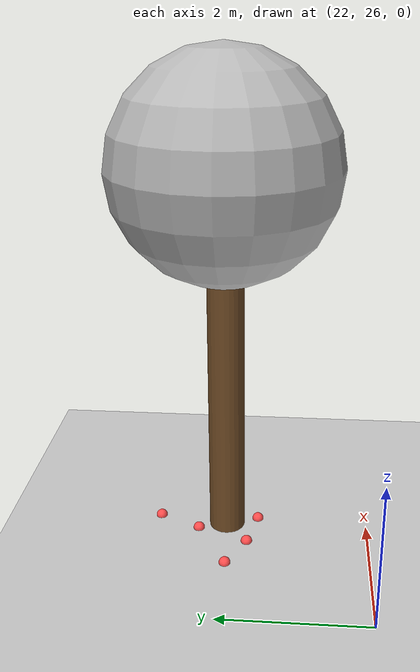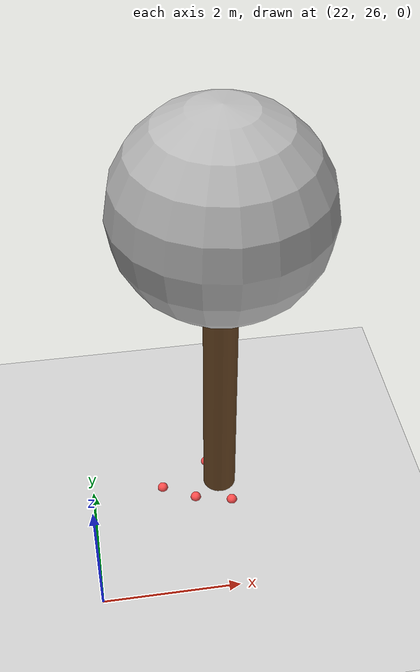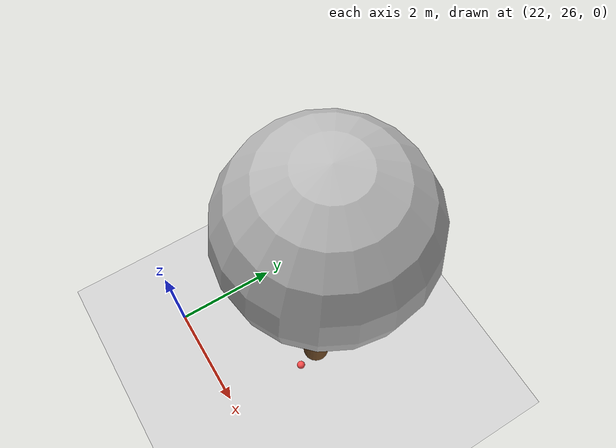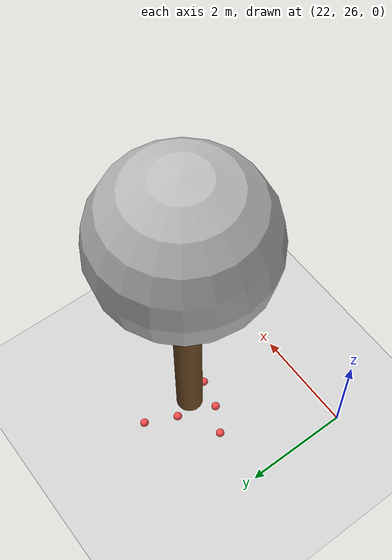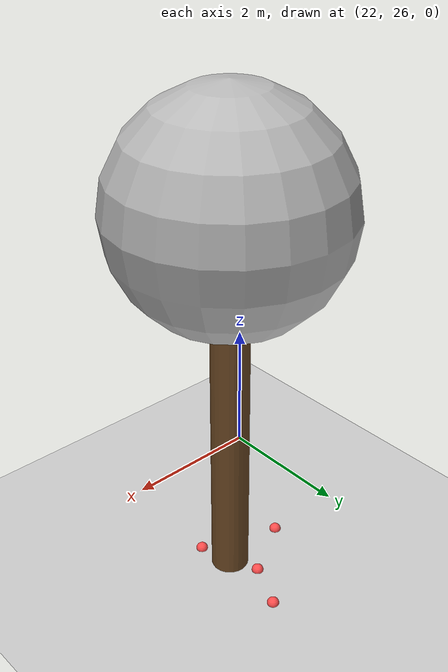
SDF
<sdf version="1.7">
 <world name="default">
  <model name="ground_plane">
   <static>1</static>
   <link name="link">
    <collision name="collision">
     <geometry><plane><normal>0 0 1</normal><size>100 100</size></plane></geometry>
     <surface>
      <contact><collide_bitmask>65535</collide_bitmask></contact>
      <friction><ode><mu>100</mu><mu2>50</mu2></ode></friction>
     </surface>
    </collision>
    <visual name="visual">
     <cast_shadows>0</cast_shadows>
     <geometry><plane><normal>0 0 1</normal><size>100 100</size></plane></geometry>
     <material>
      <script><uri>file://media/materials/scripts/gazebo.material</uri><name>Gazebo/Grey</name></script>
     </material>
    </visual>
   </link>
  </model>
  <model name="tree_simple_33">
   <static>1</static>
   <link name="link">
    <pose>0 0 0.1 0 -0 0</pose>
    <inertial>
     <mass>666</mass>
     <inertia>
      <ixx>0.0861167</ixx>
      <ixy>0</ixy>
      <ixz>0</ixz>
      <iyy>0.0861167</iyy>
      <iyz>0</iyz>
      <izz>0.0861167</izz>
     </inertia>
    </inertial>
    <collision name="collision_trunk">
     <pose>0 0 2 0 -0 0</pose>
     <geometry><cylinder><radius>0.25</radius><length>4</length></cylinder></geometry>
     <surface>
      <contact>
       <poissons_ratio>0.347</poissons_ratio>
       <elastic_modulus>8.8e+09</elastic_modulus>
       <ode><kp>100000</kp><kd>100</kd><max_vel>100</max_vel><min_depth>0.001</min_depth></ode>
      </contact>
      <friction>
       <torsional>
        <coefficient>1</coefficient>
        <use_patch_radius>0</use_patch_radius>
        <surface_radius>0.01</surface_radius>
       </torsional>
      </friction>
     </surface>
    </collision>
    <collision name="collision_treetop">
     <pose>0 0 5.2 0 -0 0</pose>
     <geometry><sphere><radius>1.5</radius></sphere></geometry>
     <surface>
      <contact>
       <poissons_ratio>0.347</poissons_ratio>
       <elastic_modulus>8.8e+09</elastic_modulus>
       <ode><kp>100000</kp><kd>100</kd><max_vel>100</max_vel><min_depth>0.001</min_depth></ode>
      </contact>
      <friction>
       <torsional>
        <coefficient>1</coefficient>
        <use_patch_radius>0</use_patch_radius>
        <surface_radius>0.01</surface_radius>
       </torsional>
      </friction>
     </surface>
    </collision>
    <visual name="trunk">
     <pose>0 0 2 0 -0 0</pose>
     <geometry><cylinder><radius>0.25</radius><length>4</length></cylinder></geometry>
     <material>
      <script>
       <uri>model://tree_simple/scripts</uri>
       <uri>model://tree_simple/materials/textures</uri>
       <name>TreeSimple/Trunk</name>
      </script>
     </material>
    </visual>
    <visual name="treetop">
     <pose>0 0 5.2 0 -0 0</pose>
     <geometry><sphere><radius>1.5</radius></sphere></geometry>
     <material>
      <script>
       <uri>model://tree_simple/scripts</uri>
       <uri>model://tree_simple/materials/textures</uri>
       <name>TreeSimple/Treetop</name>
      </script>
     </material>
    </visual>
   </link>
   <pose>24 28 -0.1 0 -0 0</pose>
  </model>
  <model name="seed_red_147">
   <link name="link">
    <inertial>
     <mass>1</mass>
     <inertia><ixx>0.1</ixx><ixy>0</ixy><ixz>0</ixz><iyy>0.1</iyy><iyz>0</iyz><izz>0.1</izz></inertia>
    </inertial>
    <visual name="visual">
     <geometry><sphere><radius>0.08</radius></sphere></geometry>
     <material>
      <script><name>Gazebo/Grey</name><uri>file://media/materials/scripts/gazebo.material</uri></script>
      <shader type="pixel"><normal_map>__default__</normal_map></shader>
      <ambient>1 0.3 0.3 1</ambient>
      <diffuse>0.7 0.7 0.7 1</diffuse>
      <specular>0.01 0.01 0.01 1</specular>
      <emissive>0 0 0 1</emissive>
     </material>
    </visual>
    <collision name="collision">
     <geometry><sphere><radius>0.0005</radius></sphere></geometry>
     <surface>
      <friction>
       <ode><mu>1</mu><mu2>1</mu2><fdir1>0 0 0</fdir1><slip1>0</slip1><slip2>0</slip2></ode>
       <torsional>
        <coefficient>1</coefficient>
        <patch_radius>0</patch_radius>
        <surface_radius>0</surface_radius>
        <use_patch_radius>1</use_patch_radius>
        <ode><slip>0</slip></ode>
       </torsional>
      </friction>
      <bounce><restitution_coefficient>0</restitution_coefficient><threshold>1e+06</threshold></bounce>
      <contact>
       <collide_without_contact>0</collide_without_contact>
       <collide_without_contact_bitmask>1</collide_without_contact_bitmask>
       <collide_bitmask>1</collide_bitmask>
       <ode>
        <soft_cfm>0</soft_cfm>
        <soft_erp>0.2</soft_erp>
        <kp>1e+13</kp>
        <kd>1</kd>
        <max_vel>0.01</max_vel>
        <min_depth>0</min_depth>
       </ode>
       <bullet>
        <split_impulse>1</split_impulse>
        <split_impulse_penetration_threshold>-0.01</split_impulse_penetration_threshold>
        <soft_cfm>0</soft_cfm>
        <soft_erp>0.2</soft_erp>
        <kp>1e+13</kp>
        <kd>1</kd>
       </bullet>
      </contact>
     </surface>
    </collision>
   </link>
   <static>0</static>
   <pose>23.8474 28.3948 0.0005 0 -0 0</pose>
  </model>
  <model name="seed_red_148">
   <link name="link">
    <inertial>
     <mass>1</mass>
     <inertia><ixx>0.1</ixx><ixy>0</ixy><ixz>0</ixz><iyy>0.1</iyy><iyz>0</iyz><izz>0.1</izz></inertia>
    </inertial>
    <visual name="visual">
     <geometry><sphere><radius>0.08</radius></sphere></geometry>
     <material>
      <script><name>Gazebo/Grey</name><uri>file://media/materials/scripts/gazebo.material</uri></script>
      <shader type="pixel"><normal_map>__default__</normal_map></shader>
      <ambient>1 0.3 0.3 1</ambient>
      <diffuse>0.7 0.7 0.7 1</diffuse>
      <specular>0.01 0.01 0.01 1</specular>
      <emissive>0 0 0 1</emissive>
     </material>
    </visual>
    <collision name="collision">
     <geometry><sphere><radius>0.0005</radius></sphere></geometry>
     <surface>
      <friction>
       <ode><mu>1</mu><mu2>1</mu2><fdir1>0 0 0</fdir1><slip1>0</slip1><slip2>0</slip2></ode>
       <torsional>
        <coefficient>1</coefficient>
        <patch_radius>0</patch_radius>
        <surface_radius>0</surface_radius>
        <use_patch_radius>1</use_patch_radius>
        <ode><slip>0</slip></ode>
       </torsional>
      </friction>
      <bounce><restitution_coefficient>0</restitution_coefficient><threshold>1e+06</threshold></bounce>
      <contact>
       <collide_without_contact>0</collide_without_contact>
       <collide_without_contact_bitmask>1</collide_without_contact_bitmask>
       <collide_bitmask>1</collide_bitmask>
       <ode>
        <soft_cfm>0</soft_cfm>
        <soft_erp>0.2</soft_erp>
        <kp>1e+13</kp>
        <kd>1</kd>
        <max_vel>0.01</max_vel>
        <min_depth>0</min_depth>
       </ode>
       <bullet>
        <split_impulse>1</split_impulse>
        <split_impulse_penetration_threshold>-0.01</split_impulse_penetration_threshold>
        <soft_cfm>0</soft_cfm>
        <soft_erp>0.2</soft_erp>
        <kp>1e+13</kp>
        <kd>1</kd>
       </bullet>
      </contact>
     </surface>
    </collision>
   </link>
   <static>0</static>
   <pose>24.1176 28.9769 0.0005 0 -0 0</pose>
  </model>
  <model name="seed_red_149">
   <link name="link">
    <inertial>
     <mass>1</mass>
     <inertia><ixx>0.1</ixx><ixy>0</ixy><ixz>0</ixz><iyy>0.1</iyy><iyz>0</iyz><izz>0.1</izz></inertia>
    </inertial>
    <visual name="visual">
     <geometry><sphere><radius>0.08</radius></sphere></geometry>
     <material>
      <script><name>Gazebo/Grey</name><uri>file://media/materials/scripts/gazebo.material</uri></script>
      <shader type="pixel"><normal_map>__default__</normal_map></shader>
      <ambient>1 0.3 0.3 1</ambient>
      <diffuse>0.7 0.7 0.7 1</diffuse>
      <specular>0.01 0.01 0.01 1</specular>
      <emissive>0 0 0 1</emissive>
     </material>
    </visual>
    <collision name="collision">
     <geometry><sphere><radius>0.0005</radius></sphere></geometry>
     <surface>
      <friction>
       <ode><mu>1</mu><mu2>1</mu2><fdir1>0 0 0</fdir1><slip1>0</slip1><slip2>0</slip2></ode>
       <torsional>
        <coefficient>1</coefficient>
        <patch_radius>0</patch_radius>
        <surface_radius>0</surface_radius>
        <use_patch_radius>1</use_patch_radius>
        <ode><slip>0</slip></ode>
       </torsional>
      </friction>
      <bounce><restitution_coefficient>0</restitution_coefficient><threshold>1e+06</threshold></bounce>
      <contact>
       <collide_without_contact>0</collide_without_contact>
       <collide_without_contact_bitmask>1</collide_without_contact_bitmask>
       <collide_bitmask>1</collide_bitmask>
       <ode>
        <soft_cfm>0</soft_cfm>
        <soft_erp>0.2</soft_erp>
        <kp>1e+13</kp>
        <kd>1</kd>
        <max_vel>0.01</max_vel>
        <min_depth>0</min_depth>
       </ode>
       <bullet>
        <split_impulse>1</split_impulse>
        <split_impulse_penetration_threshold>-0.01</split_impulse_penetration_threshold>
        <soft_cfm>0</soft_cfm>
        <soft_erp>0.2</soft_erp>
        <kp>1e+13</kp>
        <kd>1</kd>
       </bullet>
      </contact>
     </surface>
    </collision>
   </link>
   <static>0</static>
   <pose>24.1323 27.5616 0.0005 0 -0 0</pose>
  </model>
  <model name="seed_red_150">
   <link name="link">
    <inertial>
     <mass>1</mass>
     <inertia><ixx>0.1</ixx><ixy>0</ixy><ixz>0</ixz><iyy>0.1</iyy><iyz>0</iyz><izz>0.1</izz></inertia>
    </inertial>
    <visual name="visual">
     <geometry><sphere><radius>0.08</radius></sphere></geometry>
     <material>
      <script><name>Gazebo/Grey</name><uri>file://media/materials/scripts/gazebo.material</uri></script>
      <shader type="pixel"><normal_map>__default__</normal_map></shader>
      <ambient>1 0.3 0.3 1</ambient>
      <diffuse>0.7 0.7 0.7 1</diffuse>
      <specular>0.01 0.01 0.01 1</specular>
      <emissive>0 0 0 1</emissive>
     </material>
    </visual>
    <collision name="collision">
     <geometry><sphere><radius>0.0005</radius></sphere></geometry>
     <surface>
      <friction>
       <ode><mu>1</mu><mu2>1</mu2><fdir1>0 0 0</fdir1><slip1>0</slip1><slip2>0</slip2></ode>
       <torsional>
        <coefficient>1</coefficient>
        <patch_radius>0</patch_radius>
        <surface_radius>0</surface_radius>
        <use_patch_radius>1</use_patch_radius>
        <ode><slip>0</slip></ode>
       </torsional>
      </friction>
      <bounce><restitution_coefficient>0</restitution_coefficient><threshold>1e+06</threshold></bounce>
      <contact>
       <collide_without_contact>0</collide_without_contact>
       <collide_without_contact_bitmask>1</collide_without_contact_bitmask>
       <collide_bitmask>1</collide_bitmask>
       <ode>
        <soft_cfm>0</soft_cfm>
        <soft_erp>0.2</soft_erp>
        <kp>1e+13</kp>
        <kd>1</kd>
        <max_vel>0.01</max_vel>
        <min_depth>0</min_depth>
       </ode>
       <bullet>
        <split_impulse>1</split_impulse>
        <split_impulse_penetration_threshold>-0.01</split_impulse_penetration_threshold>
        <soft_cfm>0</soft_cfm>
        <soft_erp>0.2</soft_erp>
        <kp>1e+13</kp>
        <kd>1</kd>
       </bullet>
      </contact>
     </surface>
    </collision>
   </link>
   <static>0</static>
   <pose>23.5807 27.694 0.0005 0 -0 0</pose>
  </model>
  <model name="seed_red_155">
   <link name="link">
    <inertial>
     <mass>1</mass>
     <inertia><ixx>0.1</ixx><ixy>0</ixy><ixz>0</ixz><iyy>0.1</iyy><iyz>0</iyz><izz>0.1</izz></inertia>
    </inertial>
    <visual name="visual">
     <geometry><sphere><radius>0.08</radius></sphere></geometry>
     <material>
      <script><name>Gazebo/Grey</name><uri>file://media/materials/scripts/gazebo.material</uri></script>
      <shader type="pixel"><normal_map>__default__</normal_map></shader>
      <ambient>1 0.3 0.3 1</ambient>
      <diffuse>0.7 0.7 0.7 1</diffuse>
      <specular>0.01 0.01 0.01 1</specular>
      <emissive>0 0 0 1</emissive>
     </material>
    </visual>
    <collision name="collision">
     <geometry><sphere><radius>0.0005</radius></sphere></geometry>
     <surface>
      <friction>
       <ode><mu>1</mu><mu2>1</mu2><fdir1>0 0 0</fdir1><slip1>0</slip1><slip2>0</slip2></ode>
       <torsional>
        <coefficient>1</coefficient>
        <patch_radius>0</patch_radius>
        <surface_radius>0</surface_radius>
        <use_patch_radius>1</use_patch_radius>
        <ode><slip>0</slip></ode>
       </torsional>
      </friction>
      <bounce><restitution_coefficient>0</restitution_coefficient><threshold>1e+06</threshold></bounce>
      <contact>
       <collide_without_contact>0</collide_without_contact>
       <collide_without_contact_bitmask>1</collide_without_contact_bitmask>
       <collide_bitmask>1</collide_bitmask>
       <ode>
        <soft_cfm>0</soft_cfm>
        <soft_erp>0.2</soft_erp>
        <kp>1e+13</kp>
        <kd>1</kd>
        <max_vel>0.01</max_vel>
        <min_depth>0</min_depth>
       </ode>
       <bullet>
        <split_impulse>1</split_impulse>
        <split_impulse_penetration_threshold>-0.01</split_impulse_penetration_threshold>
        <soft_cfm>0</soft_cfm>
        <soft_erp>0.2</soft_erp>
        <kp>1e+13</kp>
        <kd>1</kd>
       </bullet>
      </contact>
     </surface>
    </collision>
   </link>
   <static>0</static>
   <pose>23.091 27.9589 0.0005 0 -0 0</pose>
  </model>
 </world>
</sdf>
